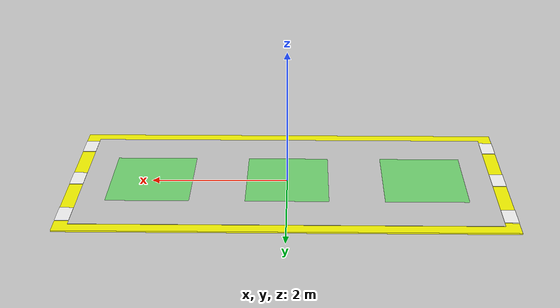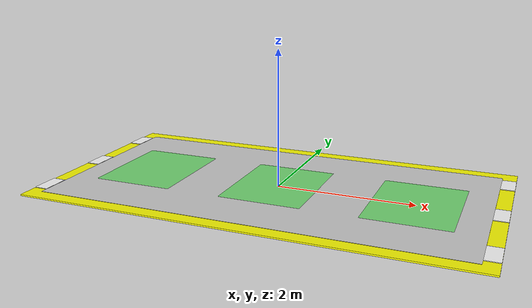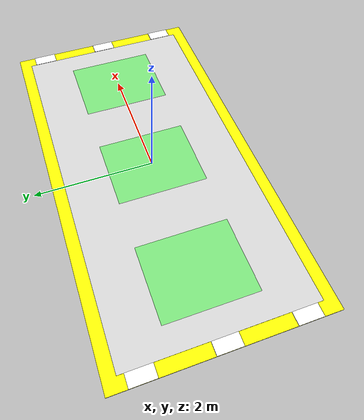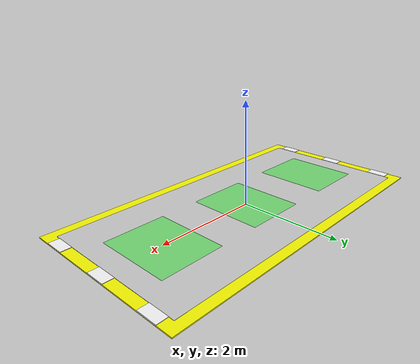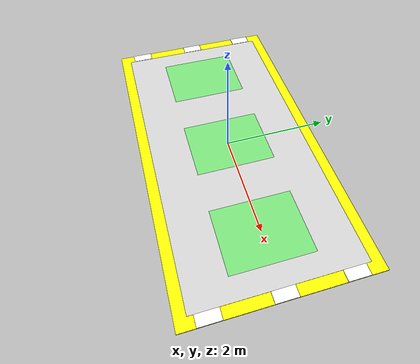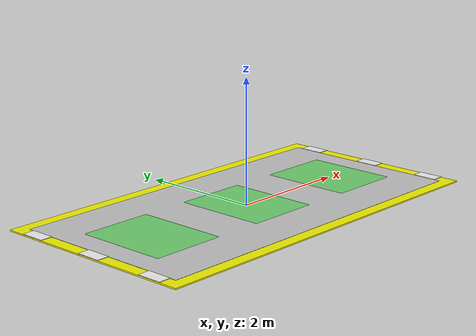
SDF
<?xml version="1.0" ?>
<sdf version="1.10">
  <model name="charging_zone">
    <static>true</static>

    <link name="zone_link">

      <!-- MAIN FLOOR (inner area) -->
      <visual name="inner_area">
        <pose>0 0 0.01 0 0 0</pose>
        <geometry>
          <box>
            <!-- Space for 3 Husky robots -->
            <size>6 3 0.02</size>
          </box>
        </geometry>
        <material>
          <!-- light gray center -->
          <ambient>0.8 0.8 0.8 0.6</ambient>
          <diffuse>0.8 0.8 0.8 0.6</diffuse>
        </material>
      </visual>

      <!-- BORDER BASE (yellow) -->
      <visual name="border_base">
        <pose>0 0 0.011 0 0 0</pose>
        <geometry>
          <box>
            <size>6.4 3.4 0.02</size>
          </box>
        </geometry>
        <material>
          <ambient>1 1 0 1</ambient> <!-- yellow -->
          <diffuse>1 1 0 1</diffuse>
        </material>
      </visual>

      <!-- INNER CUT (to create border effect) -->
      <visual name="border_cut">
        <pose>0 0 0.012 0 0 0</pose>
        <geometry>
          <box>
            <size>6 3 0.025</size>
          </box>
        </geometry>
        <material>
          <ambient>0.8 0.8 0.8 1</ambient>
          <diffuse>0.8 0.8 0.8 1</diffuse>
        </material>
      </visual>

      <!-- STRIPES (white blocks) -->

      <!-- left stripes -->
      <visual name="stripe_left_1">
        <pose>-3.1 -1.2 0.02 0 0 0</pose>
        <geometry><box><size>0.2 0.4 0.02</size></box></geometry>
        <material><ambient>1 1 1 1</ambient></material>
      </visual>

      <visual name="stripe_left_2">
        <pose>-3.1 0 0.02 0 0 0</pose>
        <geometry><box><size>0.2 0.4 0.02</size></box></geometry>
        <material><ambient>1 1 1 1</ambient></material>
      </visual>

      <visual name="stripe_left_3">
        <pose>-3.1 1.2 0.02 0 0 0</pose>
        <geometry><box><size>0.2 0.4 0.02</size></box></geometry>
        <material><ambient>1 1 1 1</ambient></material>
      </visual>

      <!-- right stripes -->
      <visual name="stripe_right_1">
        <pose>3.1 -1.2 0.02 0 0 0</pose>
        <geometry><box><size>0.2 0.4 0.02</size></box></geometry>
        <material><ambient>1 1 1 1</ambient></material>
      </visual>

      <visual name="stripe_right_2">
        <pose>3.1 0 0.02 0 0 0</pose>
        <geometry><box><size>0.2 0.4 0.02</size></box></geometry>
        <material><ambient>1 1 1 1</ambient></material>
      </visual>

      <visual name="stripe_right_3">
        <pose>3.1 1.2 0.02 0 0 0</pose>
        <geometry><box><size>0.2 0.4 0.02</size></box></geometry>
        <material><ambient>1 1 1 1</ambient></material>
      </visual>

      <!-- ROBOT POSITION MARKERS -->

      <!-- slot 1 -->
      <visual name="robot_slot_1">
        <pose>-2 0 0.02 0 0 0</pose>
        <geometry>
          <box>
            <size>1.2 1.5 0.02</size>
          </box>
        </geometry>
        <material>
          <ambient>0 1 0 0.4</ambient>
        </material>
      </visual>

      <!-- slot 2 -->
      <visual name="robot_slot_2">
        <pose>0 0 0.02 0 0 0</pose>
        <geometry>
          <box>
            <size>1.2 1.5 0.02</size>
          </box>
        </geometry>
        <material>
          <ambient>0 1 0 0.4</ambient>
        </material>
      </visual>

      <!-- slot 3 -->
      <visual name="robot_slot_3">
        <pose>2 0 0.02 0 0 0</pose>
        <geometry>
          <box>
            <size>1.2 1.5 0.02</size>
          </box>
        </geometry>
        <material>
          <ambient>0 1 0 0.4</ambient>
        </material>
      </visual>

    </link>
  </model>
</sdf>
